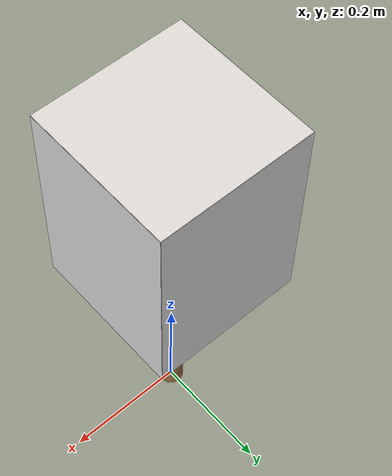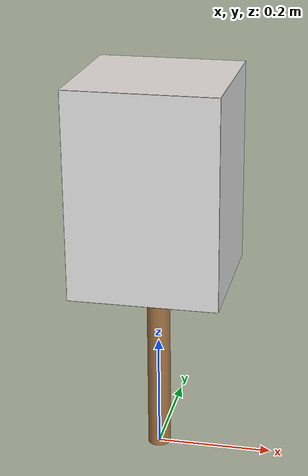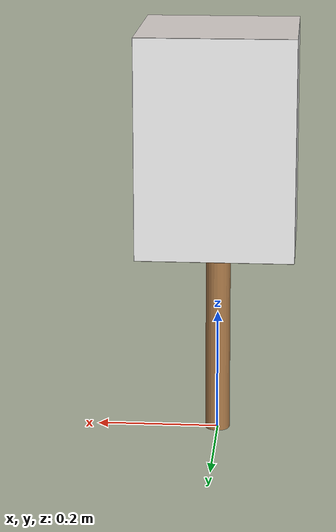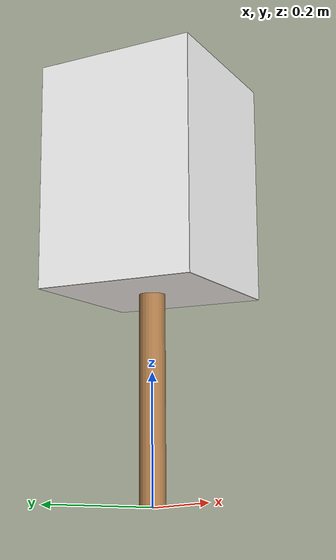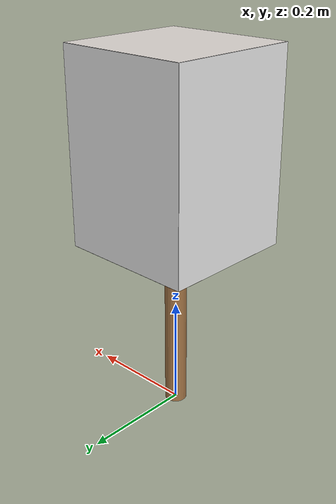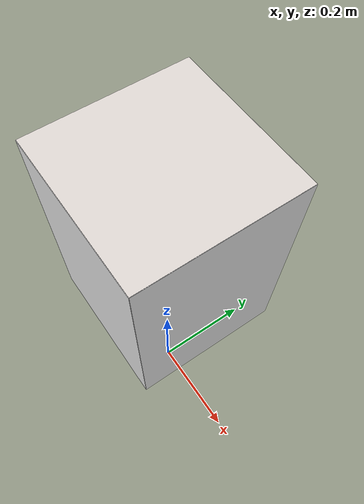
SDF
<?xml version="1.0" ?>
<sdf version="1.7">
  <!-- Auto-generated SDF for ArUco Pole with Tag 16 -->
  <!-- Box visual faces are 0.1 wide/deep, 0.2 high. Box is closed top/bottom. -->
  <model name="aruco_pole_16"> <!-- Descriptive model name -->
    <static>true</static>
    <link name="aruco_pole_link">

      <!-- === Pole === -->
      <collision name="pole_collision">
        <pose>0 0 0.17250 0 0 0</pose>
        <geometry><cylinder><radius>0.02000</radius><length>0.34500</length></cylinder></geometry>
      </collision>
      <visual name="pole_visual">
        <pose>0 0 0.17250 0 0 0</pose>
        <geometry><cylinder><radius>0.02000</radius><length>0.34500</length></cylinder></geometry>
        <material><script><uri>file://media/materials/scripts/gazebo.material</uri><name>Gazebo/Wood</name></script></material>
      </visual>

      <!-- === Main Marker Box COLLISION === -->
      <!-- Defines the physical boundary -->
      <collision name="box_collision">
        <pose>0 0 0.44500 0 0 0</pose>
        <geometry><box><size>0.15000 0.15000 0.20000</size></box></geometry>
      </collision>

      <!-- === Textured Side Panels (Visuals only) === -->
      <!-- Sized and positioned to match the collision box faces -->

      <!-- Front Face Panel (+X) -->
      <visual name="box_face_front_panel">
        <pose>0.12500 0 0.49500 0 0 0</pose>
        <!-- Size: Thickness(X), Width(Y=Depth), Height(Z) -->
        <geometry><box><size>0.00100 0.25000 0.35000</size></box></geometry>
        <material>
          <ambient>1 1 1 1</ambient><diffuse>1 1 1 1</diffuse><specular>0 0 0 1</specular>
          <pbr><metal>
            <albedo_map>model://aruco_pole_textures/materials/textures/aruco_tag_16.png</albedo_map>
            <metalness>0.0</metalness><roughness>1.0</roughness>
          </metal></pbr>
        </material>
      </visual>

      <!-- Back Face Panel (-X) -->
      <visual name="box_face_back_panel">
        <pose>-0.12500 0 0.49500 0 0 0</pose>
         <!-- Size: Thickness(X), Width(Y=Depth), Height(Z) -->
        <geometry><box><size>0.00100 0.25000 0.35000</size></box></geometry>
         <material>
           <ambient>1 1 1 1</ambient><diffuse>1 1 1 1</diffuse><specular>0 0 0 1</specular>
           <pbr><metal>
             <albedo_map>model://aruco_pole_textures/materials/textures/aruco_tag_16.png</albedo_map>
             <metalness>0.0</metalness><roughness>1.0</roughness>
           </metal></pbr>
         </material>
      </visual>

      <!-- Right Face Panel (+Y) -->
      <visual name="box_face_right_panel">
        <pose>0 0.12500 0.49500 0 0 0</pose>
         <!-- Size: Width(X), Thickness(Y), Height(Z) -->
        <geometry><box><size>0.25000 0.00100 0.35000</size></box></geometry>
         <material>
           <ambient>1 1 1 1</ambient><diffuse>1 1 1 1</diffuse><specular>0 0 0 1</specular>
           <pbr><metal>
             <albedo_map>model://aruco_pole_textures/materials/textures/aruco_tag_16.png</albedo_map>
             <metalness>0.0</metalness><roughness>1.0</roughness>
           </metal></pbr>
         </material>
      </visual>

      <!-- Left Face Panel (-Y) -->
      <visual name="box_face_left_panel">
        <pose>0 -0.12500 0.49500 0 0 0</pose>
        <!-- Size: Width(X), Thickness(Y), Height(Z) -->
        <geometry><box><size>0.25000 0.00100 0.35000</size></box></geometry>
         <material>
           <ambient>1 1 1 1</ambient><diffuse>1 1 1 1</diffuse><specular>0 0 0 1</specular>
           <pbr><metal>
             <albedo_map>model://aruco_pole_textures/materials/textures/aruco_tag_16.png</albedo_map>
             <metalness>0.0</metalness><roughness>1.0</roughness>
           </metal></pbr>
         </material>
      </visual>

      <!-- === Top and Bottom Caps (Visuals only, No Texture) === -->

      <!-- Top Face Panel (+Z) -->
      <visual name="box_face_top_panel">
        <pose>0 0 0.67000 0 0 0</pose>
        <!-- Size: Width(X), Length(Y=Depth), Thickness(Z) -->
        <geometry><box><size>0.25000 0.25000 0.00100</size></box></geometry>
        <material>
          <ambient>0.590 0.571 0.560 1.0</ambient>
          <diffuse>0.843 0.816 0.800 1</diffuse>
          <specular>0.1 0.1 0.1 1</specular>
        </material>
      </visual>

      <!-- Bottom Face Panel (-Z) -->
      <visual name="box_face_bottom_panel">
        <pose>0 0 0.32000 0 0 0</pose>
        <!-- Size: Width(X), Length(Y=Depth), Thickness(Z) -->
        <geometry><box><size>0.25000 0.25000 0.00100</size></box></geometry>
         <material>
           <ambient>0.590 0.571 0.560 1.0</ambient>
           <diffuse>0.843 0.816 0.800 1</diffuse>
           <specular>0.1 0.1 0.1 1</specular>
         </material>
      </visual>

    </link>
  </model>
</sdf>
